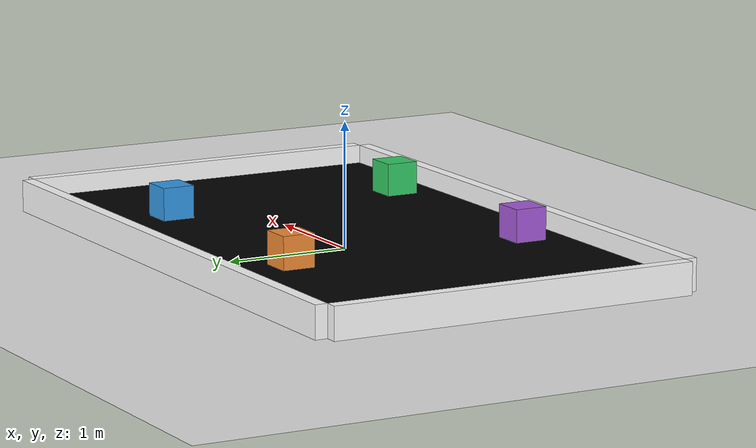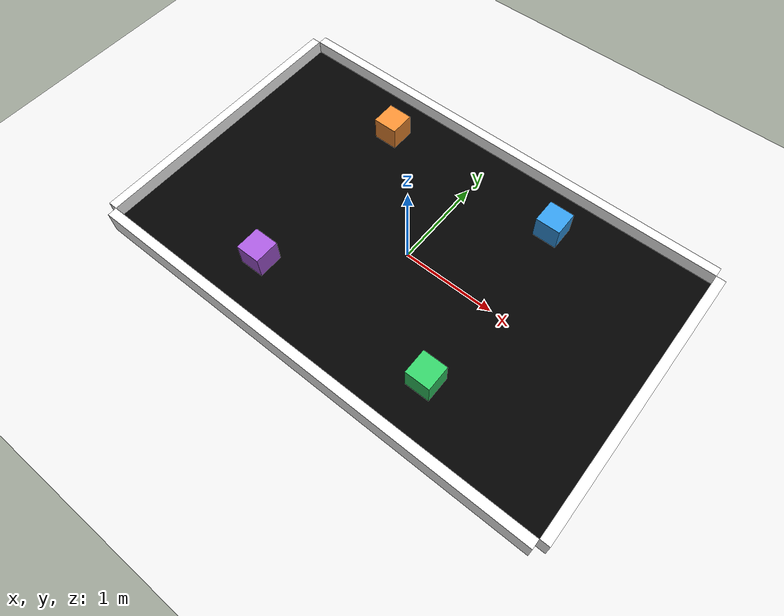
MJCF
<mujoco model="robot_cube">
  <compiler angle="degree" coordinate="local"/>
  <option timestep="0.01" gravity="0 0 -9.81"/>

  <worldbody>
    <!-- Suelo -->
    <body name="ground" pos="0 0 0">
      <geom name="floor" type="plane" size="10 10 0.1" rgba="0.9 0.9 0.9 1"/>
    </body>

    <!-- Mesa negra -->
    <body name="table" pos="0 0 0.05">
      <geom name="table_surface" type="box" size="2.5 1.5 0.05"
        rgba="0 0 0 1" mass="5"
        friction="0.001 0.00005 0.00005"/>
    </body>

            <!-- PAREDES INVISIBLES (LÍMITES DEL CAMPO) -->
        <!-- Pared +X -->
    <body name="wall_x_plus" pos="2.55 0 0.0">
      <geom name="wall_x_plus_geom" type="box"
            size="0.05 1.5 0.25"
            rgba="255 255 255 1"
            contype="1" conaffinity="1"
            friction="1.0 0.01 0.01"/>        <!-- Añadimos un poco de rebote -->
    </body>

    <!-- Pared -X -->
    <body name="wall_x_minus" pos="-2.55 0 0.0">
      <geom name="wall_x_minus_geom" type="box"
            size="0.05 1.5 0.25"
            rgba="255 255 255 1"
            contype="1" conaffinity="1"
            friction="1.0 0.01 0.01"/>
    </body>

    <!-- Pared +Y -->
    <body name="wall_y_plus" pos="0 1.55 0.0">
      <geom name="wall_y_plus_geom" type="box"
            size="2.5 0.05 0.25"
            rgba="255 255 255 1"
            contype="1" conaffinity="1"
            friction="1.0 0.01 0.01"/>        <!-- Añadimos un poco de rebote -->
    </body>

    <!-- Pared -Y -->
    <body name="wall_y_minus" pos="0 -1.55 0.0">
      <geom name="wall_y_minus_geom" type="box"
            size="2.5 0.05 0.25"
            rgba="255 255 255 1"
            contype="1" conaffinity="1"
            friction="1.0 0.01 0.01"/>        <!-- Añadimos un poco de rebote -->
    </body>

    <!-- Cuerpo cúbico del robot 1-->
    <body name="cube_body_1" pos="1 1 0.3">
      <geom name="cube_1" type="box" size="0.13 0.13 0.13"
            rgba="0.20 0.60 0.90 1" mass="0.5"
            friction="0.003 0.00005 0.00005"/>

      <!-- Juntas para desplazar el cubo -->
      <joint name="move_x_1" type="slide" axis="1 0 0" limited="false" damping="0.02"/>
      <joint name="move_y_1" type="slide" axis="0 1 0" limited="false" damping="0.02"/>

        <!-- Rotación en yaw -->
      <joint name="yaw_1" type="hinge" axis="0 0 1" limited="false" damping="0.01"/>

    </body>

    <!-- Cuerpo cúbico del robot 2-->
    <body name="cube_body_2" pos="1 -1 0.3">
      <geom name="cube_2" type="box" size="0.13 0.13 0.13"
            rgba="0.20 0.80 0.40 1" mass="0.5"
            friction="0.003 0.00005 0.00005"/>

      <!-- Juntas para mover el cubo -->
      <joint name="move_x_2" type="slide" axis="1 0 0" limited="false" damping="0.02"/>
      <joint name="move_y_2" type="slide" axis="0 1 0" limited="false" damping="0.02"/>

      <!-- Rotación en yaw -->
      <joint name="yaw_2" type="hinge" axis="0 0 1" limited="false" damping="0.01"/>

    </body>

        <!-- Cuerpo cúbico del robot 3-->
    <body name="cube_body_3" pos="-1 1 0.3">
      <geom name="cube_3" type="box" size="0.13 0.13 0.13"
            rgba="0.95 0.55 0.20 1" mass="0.5"
            friction="0.003 0.00005 0.00005"/>

      <!-- Juntas para mover el cubo -->
      <joint name="move_x_3" type="slide" axis="1 0 0" limited="false" damping="0.02"/>
      <joint name="move_y_3" type="slide" axis="0 1 0" limited="false" damping="0.02"/>

      <!-- Rotación en yaw -->
      <joint name="yaw_3" type="hinge" axis="0 0 1" limited="false" damping="0.01"/>
    </body>

        <!-- Cuerpo cúbico del robot 4-->
    <body name="cube_body_4" pos="-1 -1 0.3">
      <geom name="cube_4" type="box" size="0.13 0.13 0.13"
            rgba="0.65 0.35 0.85 1" mass="0.5"
            friction="0.003 0.00005 0.00005"/>

      <!-- Juntas para mover el cubo -->
      <joint name="move_x_4" type="slide" axis="1 0 0" limited="false" damping="0.02"/>
      <joint name="move_y_4" type="slide" axis="0 1 0" limited="false" damping="0.02"/>

      <!-- Rotación en yaw -->
      <joint name="yaw_4" type="hinge" axis="0 0 1" limited="false" damping="0.01"/>

    </body>

    <camera name="top_view" pos="0 0 4.0" zaxis="0 0 -1" fovy="60"/>

  </worldbody>

  <!-- Actuadores -->
  <actuator>
    <motor joint="move_x_1" ctrlrange="-0.5 0.5"/>
    <motor joint="move_y_1" ctrlrange="-0.5 0.5"/>
    <motor joint="yaw_1"    ctrlrange="-0.2 0.2"/>

    <motor joint="move_x_2" ctrlrange="-0.5 0.5"/>
    <motor joint="move_y_2" ctrlrange="-0.5 0.5"/>
    <motor joint="yaw_2"    ctrlrange="-0.2 0.2"/>

    <motor joint="move_x_3" ctrlrange="-0.5 0.5"/>
    <motor joint="move_y_3" ctrlrange="-0.5 0.5"/>
    <motor joint="yaw_3"    ctrlrange="-0.2 0.2"/>

    <motor joint="move_x_4" ctrlrange="-0.5 0.5"/>
    <motor joint="move_y_4" ctrlrange="-0.5 0.5"/>
    <motor joint="yaw_4"    ctrlrange="-0.2 0.2"/>

  </actuator>
</mujoco>
